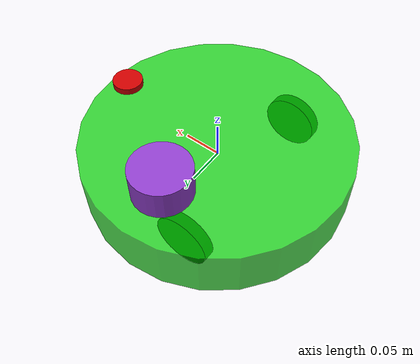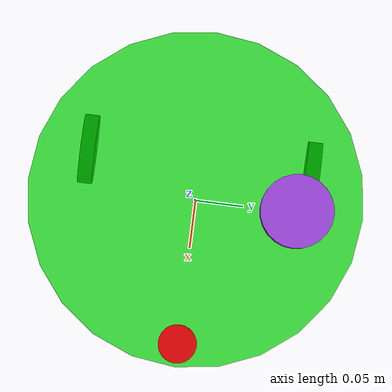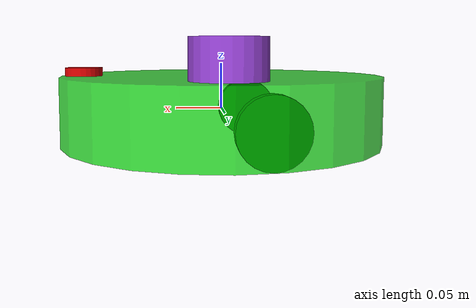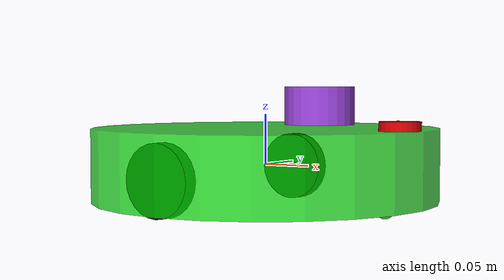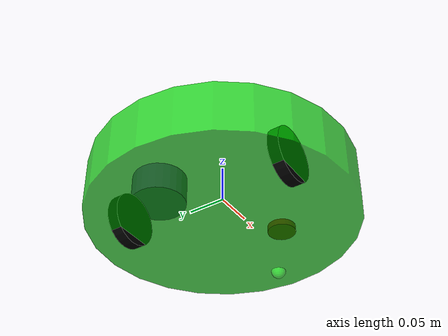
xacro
<?xml version="1.0"?>
<!-- iRobot Roomba 650 model -->
<robot name="roomba" xmlns:xacro="http://www.ros.org/wiki/xacro">

<!-- Change parameters in .gazebo and controller .yaml -->

  <xacro:property name="PI" value="3.141592"/>
  <xacro:property name="wheels_offset" value="0.235"/>
  <xacro:property name="wheels_xgap" value="0.04"/>
  <xacro:property name="wheels_radius" value="0.036"/>
  <xacro:property name="wheels_width" value="0.015"/>
  <xacro:property name="wheels_mass" value="0.7"/>
  <xacro:property name="wheels_damping" value="0.1"/>
  <xacro:property name="base_zgap" value="0.01"/>
  <xacro:property name="base_height" value="${0.083-base_zgap}"/>
  <xacro:property name="base_radius" value="0.174"/>
  <xacro:property name="base_mass" value="3.0"/>
  <xacro:property name="roller_radius" value="${base_zgap}"/>
  <xacro:property name="roller_xgap" value="0.135"/>
  <xacro:property name="ir_height" value="0.009"/>
  <xacro:property name="ir_radius" value="0.02"/>
  <xacro:property name="ir_xgap" value="0.15"/>
  <xacro:property name="lidar_radius" value="0.038"/>
  <xacro:property name="lidar_heigth" value="0.041"/>
  <xacro:property name="lidar_offset_y" value="0.105"/>

  <xacro:macro name="cylinder_inertial" params="radius length mass">
    <inertial>
      <origin xyz="0 0 0" rpy="0 0 0"/>
      <mass value="${mass}"/>
      <inertia ixx="${mass*radius*radius/2}" ixy="0.0" ixz="0.0"
               iyy="${mass*radius*radius/4+mass*length*length/12}" iyz="0.0" izz="${mass*radius*radius/4+mass*length*length/12}"/>
    </inertial>
  </xacro:macro>

  <xacro:include filename="$(find tfg_roomba)/urdf/roomba.gazebo" />
  <xacro:include filename="$(find tfg_roomba)/urdf/materials.xacro" />

  <link name="base">
    <xacro:cylinder_inertial
      radius="${base_radius}" length="${base_height}" mass="${base_mass}"/>
    <visual>
      <origin xyz="0 0 0" rpy="0 0 0"/>
      <geometry>
        <cylinder radius="${base_radius}" length="${base_height}"/>
      </geometry>
      <material name="green_transparent"/>
    </visual>
    <collision>
      <origin xyz="0 0 0" rpy="0 0 0"/>
      <geometry>
        <cylinder radius="${base_radius}" length="${base_height}"/>
      </geometry>
    </collision>
  </link>

  <joint name="lidar_joint" type="fixed">
    <origin xyz="0 ${lidar_offset_y} ${base_height/2+lidar_heigth/2}" rpy="0 0 0"/>
    <parent link="base"/>
    <child link="lidar"/>
  </joint>

  <link name="lidar">
    <inertial>
      <origin xyz="0 0 0" rpy="0 0 0"/>
      <mass value="0.05"/>
      <inertia ixx="0.0001" ixy="0.0" ixz="0.0"
               iyy="0.0001" iyz="0.0" izz="0.0001"/>
    </inertial>
    <visual>
      <origin xyz="0 0 0" rpy="0 0 0"/>
      <geometry>
        <cylinder radius="${lidar_radius}" length="${lidar_heigth}"/>
      </geometry>
      <material name="purple"/>
    </visual>
    <collision>
      <origin xyz="0 0 0" rpy="0 0 0"/>
      <geometry>
        <cylinder radius="${lidar_radius}" length="${lidar_heigth}"/>
      </geometry>
    </collision>
  </link>

  <joint name="roller_joint" type="fixed">
    <origin xyz="${roller_xgap} 0 ${-base_height/2}" rpy="0 0 0"/>
    <parent link="base"/>
    <child link="roller"/>
  </joint>

  <link name="roller">
    <inertial>
      <origin xyz="0 0 0" rpy="0 0 0"/>
      <mass value="0.05"/>
      <inertia ixx="0.0001" ixy="0.0" ixz="0.0"
               iyy="0.0001" iyz="0.0" izz="0.0001"/>
    </inertial>
    <visual>
      <origin xyz="0 0 0" rpy="0 0 0"/>
      <geometry>
        <sphere radius="${roller_radius}"/>
      </geometry>
      <material name="green_transparent"/>
    </visual>
    <collision>
      <origin xyz="0 0 0" rpy="0 0 0"/>
      <geometry>
        <sphere radius="${roller_radius}"/>
      </geometry>
    </collision>
  </link>

  <joint name="ir_joint" type="fixed">
    <origin xyz="${ir_xgap} 0 ${base_height/2+ir_height/2}" rpy="0 0 0"/>
    <parent link="base"/>
    <child link="ir"/>
  </joint>

  <link name="ir">
    <inertial>
      <origin xyz="0 0 0" rpy="0 0 0"/>
      <mass value="0.01"/>
      <inertia ixx="0.0001" ixy="0.0" ixz="0.0"
               iyy="0.0001" iyz="0.0" izz="0.0001"/>
    </inertial>
    <visual>
      <origin xyz="0 0 0" rpy="0 0 0"/>
      <geometry>
        <cylinder radius="${ir_radius}" length="${ir_height}"/>
      </geometry>
      <material name="red"/>
    </visual>
    <collision>
      <origin xyz="0 0 0" rpy="0 0 0"/>
      <geometry>
        <cylinder radius="${ir_radius}" length="${ir_height}"/>
      </geometry>
    </collision>
  </link>

  <link name="right_wheel">
    <inertial>
      <origin xyz="0 0 0" rpy="0 0 0"/>
      <mass value="${wheels_mass}"/>
      <inertia ixx="0.001" ixy="0.0" ixz="0.0"
               iyy="0.001" iyz="0.0" izz="0.001"/>
    </inertial>
    <visual>
      <origin xyz="0 0 0" rpy="0 0 0"/>
      <geometry>
        <cylinder radius="${wheels_radius}" length="${wheels_width}"/>
      </geometry>
      <material name="black"/>
    </visual>
    <collision>
      <origin xyz="0 0 0" rpy="0 0 0"/>
      <geometry>
        <cylinder radius="${wheels_radius}" length="${wheels_width}"/>
      </geometry>
    </collision>
  </link>

  <joint name="right_wheel_joint" type="continuous">
    <origin xyz="${-wheels_xgap} ${-wheels_offset/2} ${-base_zgap-base_height/2+wheels_radius}" rpy="${-PI/2} 0 0"/>
    <axis xyz="0 0 1"/>
    <parent link="base"/>
    <child link="right_wheel"/>
    <dynamics damping="${wheels_damping}"/>
  </joint>

  <link name="left_wheel">
    <inertial>
      <origin xyz="0 0 0" rpy="0 0 0"/>
      <mass value="0.25"/>
      <inertia ixx="0.001" ixy="0.0" ixz="0.0"
               iyy="0.001" iyz="0.0" izz="0.001"/>
    </inertial>
    <visual>
      <origin xyz="0 0 0" rpy="0 0 0"/>
      <geometry>
        <cylinder radius="${wheels_radius}" length="${wheels_width}"/>
      </geometry>
      <material name="black"/>
    </visual>
    <collision>
      <origin xyz="0 0 0" rpy="0 0 0"/>
      <geometry>
        <cylinder radius="${wheels_radius}" length="${wheels_width}"/>
      </geometry>
    </collision>
  </link>

  <joint name="left_wheel_joint" type="continuous">
    <origin xyz="${-wheels_xgap} ${wheels_offset/2} ${-base_zgap-base_height/2+wheels_radius}" rpy="${-PI/2} 0 0"/>
    <axis xyz="0 0 1"/>
    <parent link="base"/>
    <child link="left_wheel"/>
    <dynamics damping="${wheels_damping}"/>
  </joint>

  <transmission name="tran1">
    <type>transmission_interface/SimpleTransmission</type>
    <joint name="right_wheel_joint">
      <hardwareInterface>hardware_interface/EffortJointInterface</hardwareInterface>
    </joint>
    <actuator name="motor1">
      <hardwareInterface>hardware_interface/EffortJointInterface</hardwareInterface>
      <mechanicalReduction>1</mechanicalReduction>
    </actuator>
  </transmission>

  <transmission name="tran2">
    <type>transmission_interface/SimpleTransmission</type>
    <joint name="left_wheel_joint">
      <hardwareInterface>hardware_interface/EffortJointInterface</hardwareInterface>
    </joint>
    <actuator name="motor2">
      <hardwareInterface>hardware_interface/EffortJointInterface</hardwareInterface>
      <mechanicalReduction>1</mechanicalReduction>
    </actuator>
  </transmission>

</robot>

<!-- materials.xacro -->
<robot>

  <material name="black">
    <color rgba="0.0 0.0 0.0 1.0"/>
  </material>

  <material name="blue">
    <color rgba="0.0 0.0 0.8 1.0"/>
  </material>

  <material name="green">
    <color rgba="0.0 0.8 0.0 1.0"/>
  </material>

  <material name="green_transparent">
    <color rgba="0.0 0.8 0.0 0.75"/>
  </material>

  <material name="grey">
    <color rgba="0.2 0.2 0.2 1.0"/>
  </material>

  <material name="orange">
    <color rgba="${255/255} ${108/255} ${10/255} 1.0"/>
  </material>

  <material name="orange_transparent">
    <color rgba="${255/255} ${108/255} ${10/255} 0.75"/>
  </material>

  <material name="brown">
    <color rgba="${222/255} ${207/255} ${195/255} 1.0"/>
  </material>

  <material name="red">
    <color rgba="0.8 0.0 0.0 1.0"/>
  </material>

  <material name="white">
    <color rgba="1.0 1.0 1.0 1.0"/>
  </material>

  <material name="purple">
    <color rgba="${143/255} ${62/255} ${203/255} 1.0"/>
  </material>

</robot>
